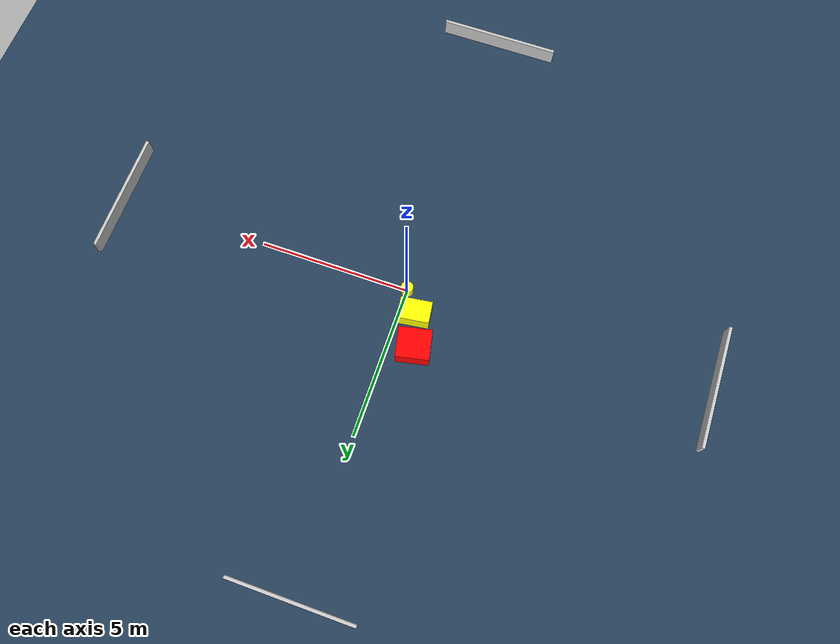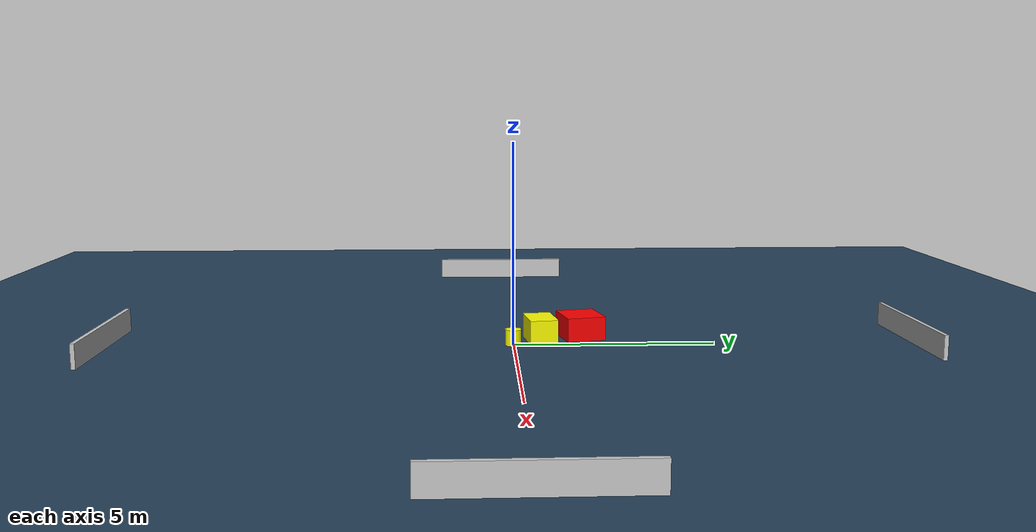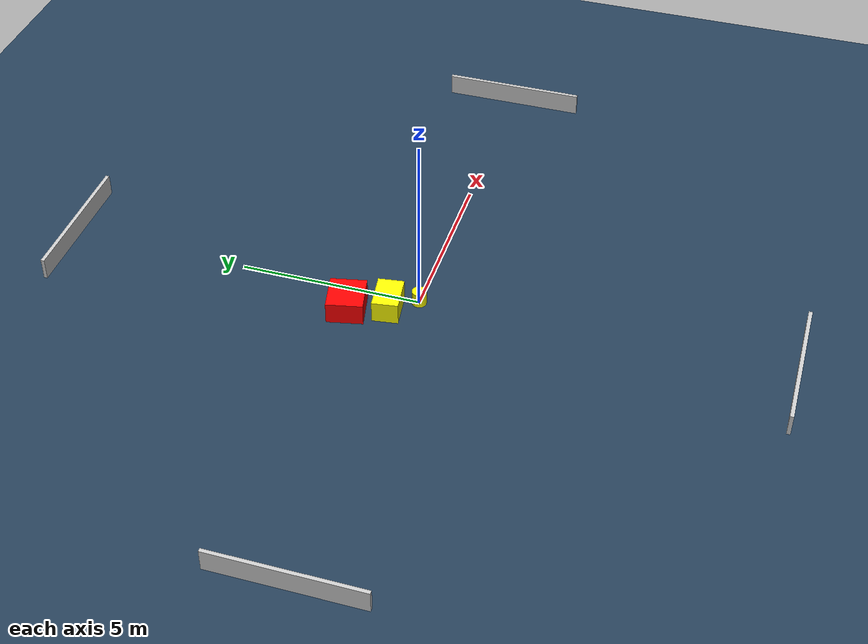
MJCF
<?xml version="1.0" ?>
<mujoco model="generated_environment">
  <option timestep="0.01" integrator="RK4" cone="elliptic"/>
  <default>
    <geom density="1"/>
  </default>
  <asset>
    <texture builtin="gradient" height="3072" name="skybox" rgb1="0.3 0.5 0.7" rgb2="0 0 0" type="skybox" width="512"/>
    <texture builtin="checker" height="300" name="groundplane" rgb1="0.2 0.3 0.4" rgb2="0.1 0.2 0.3" type="2d" width="300"/>
    <material name="groundplane" reflectance="0.2" texrepeat="5 5" texture="groundplane"/>
  </asset>
  <worldbody>
    <light dir="0 0 -1" directional="true" pos="0 0 1.5"/>
    <geom condim="3" friction="0.5 0.005 0.001" material="groundplane" name="floor" pos="0 0 0" size="0 0 0.05" type="plane"/>
    <body name="walls">
      <geom name="wall_1" condim="4" pos="-10.0 0.0 0.3" rgba="0.800000011920929 0.800000011920929 0.800000011920929 1.0" size="0.05 2.0 0.3" type="box"/>
      <geom name="wall_2" condim="4" pos="10.0 0.0 0.3" rgba="0.800000011920929 0.800000011920929 0.800000011920929 1.0" size="0.05 2.0 0.3" type="box"/>
      <geom name="wall_3" condim="4" pos="0.0 -10.0 0.3" rgba="0.800000011920929 0.800000011920929 0.800000011920929 1.0" size="2.0 0.05 0.3" type="box"/>
      <geom name="wall_4" condim="4" pos="0.0 10.0 0.3" rgba="0.800000011920929 0.800000011920929 0.800000011920929 1.0" size="2.0 0.05 0.3" type="box"/>
    </body>
    <body name="robot">
      <joint name="joint_x" type="slide" pos="0 0 0" axis="1 0 0"/>
      <joint name="joint_y" type="slide" pos="0 0 0" axis="0 1 0"/>
      <geom name="robot" type="cylinder" pos="0.0 0.0 0.2" size="0.2 0.2 0.0" mass="5.0" friction="1.0 0.005 0.0001" condim="4" rgba="1.0 1.0 0.0 1.0"/>
    </body>
    <body name="obstacle_1_movable">
      <geom name="obstacle_1_movable" condim="4" pos="-0.49730181192693884 0.7077959758562317 0.3" euler="0 0 97.74140483614129" friction="0.0 0.005 0.001" rgba="1.0 1.0 0.0 1.0" size="0.35482769873242903 0.5116375617827695 0.3" type="box" mass="0.1"/>
      <joint type="free"/>
    </body>
    <body name="obstacle_2_static">
      <geom name="obstacle_2_static" condim="4" pos="-0.8281072015293336 1.7511553745957058 0.3" euler="0 0 192.10623280546008" friction="0.0 0.005 0.001" rgba="1.0 0.0 0.0 1.0" size="0.5364669857146869 0.49469068779309544 0.3" type="box"/>
    </body>
  </worldbody>
  <actuator>
    <motor name="actuator_x" joint="joint_x" gear="1" ctrlrange="-1 1"/>
    <motor name="actuator_y" joint="joint_y" gear="1" ctrlrange="-1 1"/>
  </actuator>
</mujoco>
